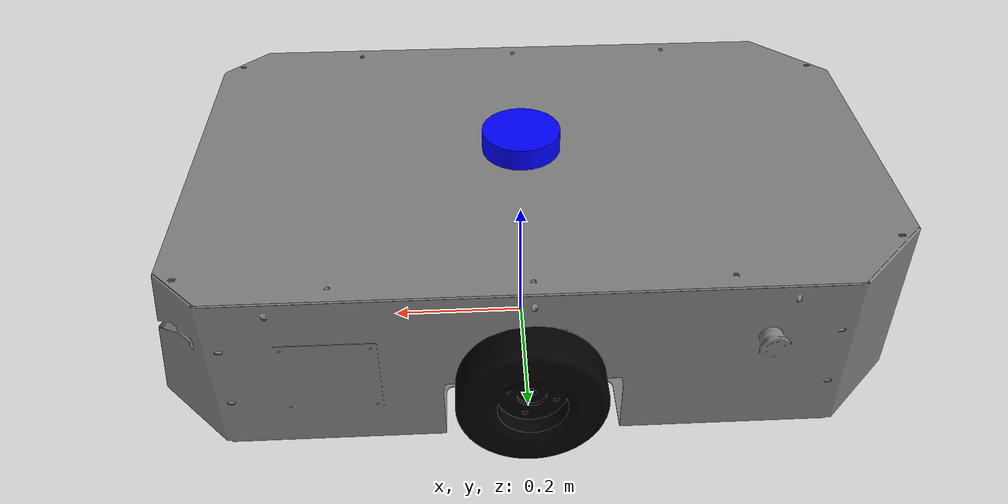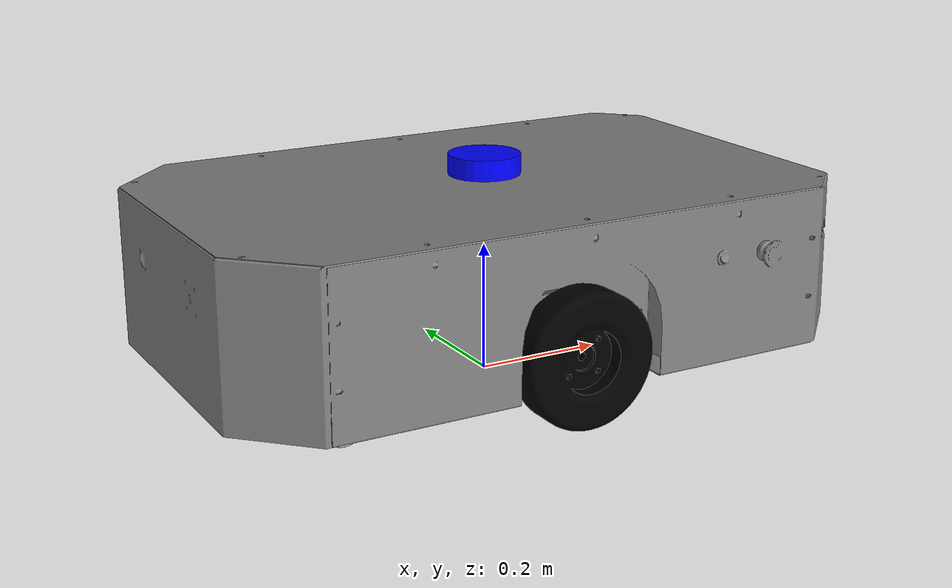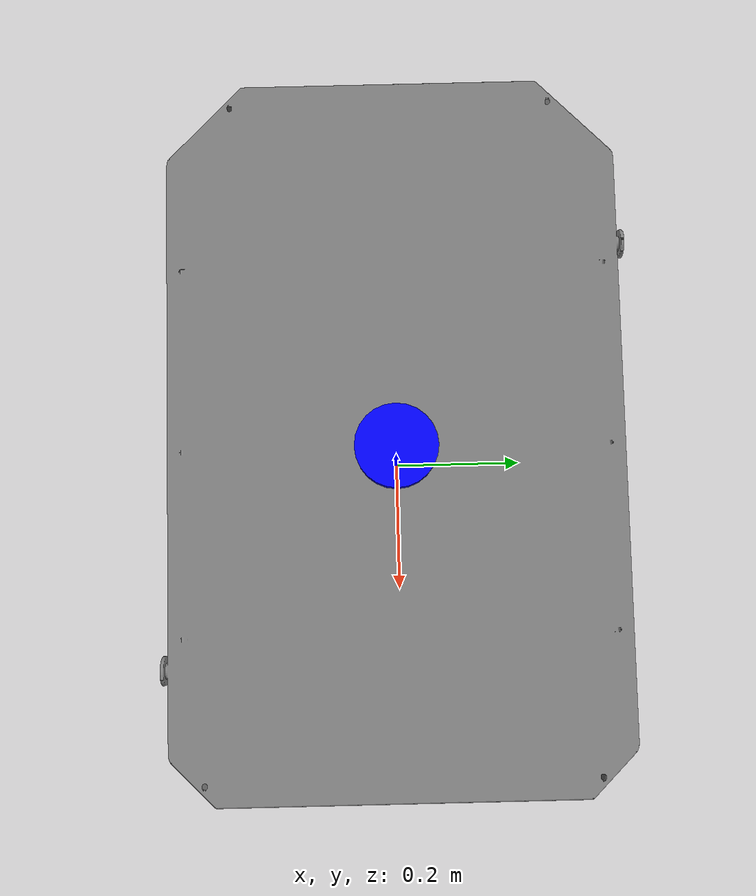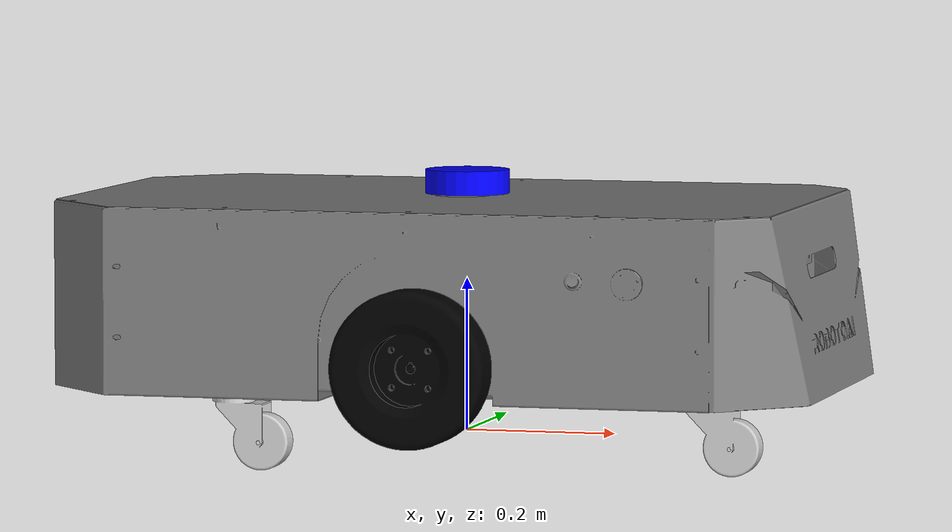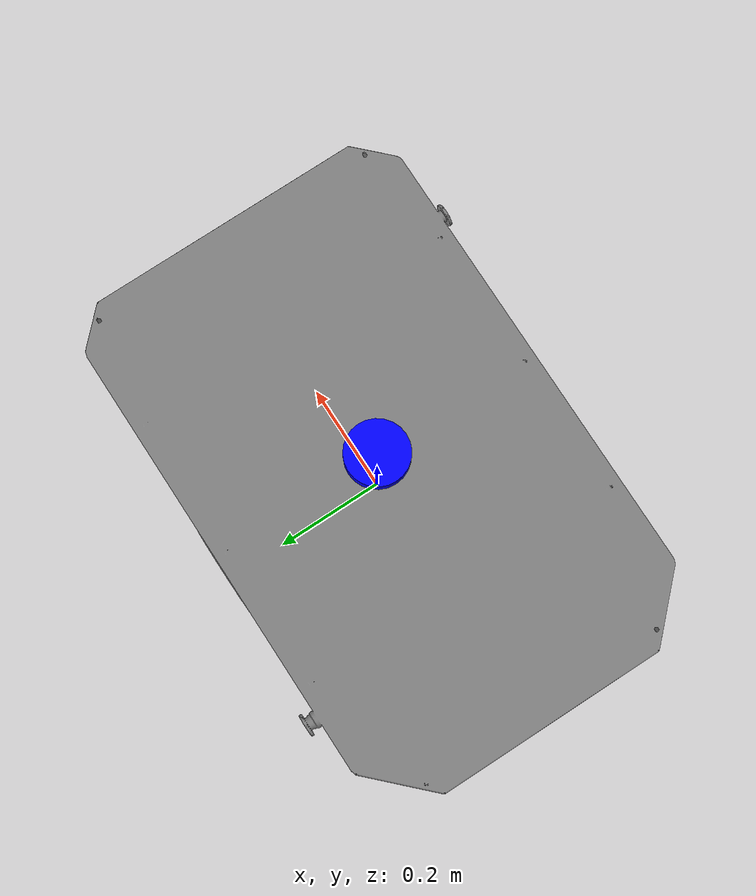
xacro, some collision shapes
<?xml version="1.0"?>
<robot name="my_mesh_robot" xmlns:xacro="http://www.ros.org/wiki/xacro">

  <xacro:property name="base_link_name" value="base_link"/>
  <xacro:property name="lidar_frame_name" value="lidar_link"/>

  <link name="base_footprint"/>

  <joint name="base_joint" type="fixed">
    <parent link="base_footprint"/>
    <child link="${base_link_name}"/>
    <origin xyz="0 0 0.1075" rpy="0 0 0"/>
  </joint>

  <link name="${base_link_name}">
    <visual>
      <geometry>
        <mesh filename="package://my_bot/meshes/base_link.STL"/>
      </geometry>
      <material name="grey">
        <color rgba="0.5 0.5 0.5 1"/>
      </material>
    </visual>
    <collision>
      <geometry>
        <mesh filename="package://my_bot/meshes/base_link.STL"/>
      </geometry>
    </collision>
    <inertial>
      <mass value="40.0"/>
      <inertia ixx="1.0" ixy="0.0" ixz="0.0" iyy="1.0" iyz="0.0" izz="1.0"/>
    </inertial>
  </link>

  <link name="left_wheel">
    <visual>
      <origin xyz="0 0 0" rpy="1.5708 0 0"/>
      <geometry>
        <mesh filename="package://my_bot/meshes/l_wheel.STL"/>
      </geometry>
      <material name="black">
        <color rgba="0 0 0 1"/>
      </material>
    </visual>
    <collision>
      <geometry>
        <cylinder radius="0.1075" length="0.05"/>
      </geometry>
    </collision>
    <inertial>
      <mass value="2.4"/>
      <inertia ixx="0.01" ixy="0" ixz="0" iyy="0.01" iyz="0" izz="0.01"/>
    </inertial>
  </link>
  <joint name="left_wheel_joint" type="continuous">
    <parent link="${base_link_name}"/>
    <child link="left_wheel"/>
    <origin xyz="0 0.281 0" rpy="-1.5708 0 0"/>
    <axis xyz="0 0 1"/>
    <dynamics damping="1.0" friction="0.2"/>
  </joint>
  <gazebo reference="left_wheel">
    <collision><surface><friction><ode><mu>1.2</mu><mu2>1.2</mu2></ode></friction><contact><ode><kp>50000</kp><kd>1.0</kd></ode></contact></surface></collision>
  </gazebo>

  <link name="right_wheel">
    <visual>
      <origin xyz="0 0 0" rpy="1.5708 0 0"/>
      <geometry>
        <mesh filename="package://my_bot/meshes/r_wheel.STL"/>
      </geometry>
      <material name="black">
        <color rgba="0 0 0 1"/>
      </material>
    </visual>
    <collision>
      <geometry>
        <cylinder radius="0.1075" length="0.05"/>
      </geometry>
    </collision>
    <inertial>
      <mass value="2.4"/>
      <inertia ixx="0.01" ixy="0" ixz="0" iyy="0.01" iyz="0" izz="0.01"/>
    </inertial>
  </link>
  <joint name="right_wheel_joint" type="continuous">
    <parent link="${base_link_name}"/>
    <child link="right_wheel"/>
    <origin xyz="0 -0.281 0" rpy="-1.5708 0 0"/>
    <axis xyz="0 0 1"/>
    <dynamics damping="1.0" friction="0.2"/>
  </joint>
  <gazebo reference="right_wheel">
    <collision><surface><friction><ode><mu>1.2</mu><mu2>1.2</mu2></ode></friction><contact><ode><kp>50000</kp><kd>1.0</kd></ode></contact></surface></collision>
  </gazebo>

  <link name="front_caster">
    <visual>
      <geometry>
        <mesh filename="package://my_bot/meshes/f_castor.STL"/>
      </geometry>
      <material name="silver"><color rgba="0.8 0.8 0.8 1"/></material>
    </visual>
    <collision><geometry><sphere radius="0.05"/></geometry></collision>
    <inertial><mass value="0.2"/><inertia ixx="0.0005" ixy="0" ixz="0" iyy="0.0005" iyz="0" izz="0.0005"/></inertial>
  </link>
  <joint name="front_caster_joint" type="fixed">
    <parent link="${base_link_name}"/><child link="front_caster"/>
    <origin xyz="0.3075 0.045 -0.0575" rpy="0 0 0"/>
  </joint>
  <gazebo reference="front_caster">
    <collision><surface><friction><ode><mu>1.0</mu><mu2>1.0</mu2></ode></friction><contact><ode><kp>20000</kp><kd>0.5</kd></ode></contact></surface></collision>
  </gazebo>

  <link name="back_caster">
    <visual>
      <geometry>
        <mesh filename="package://my_bot/meshes/r_castor.STL"/>
      </geometry>
      <material name="silver"><color rgba="0.8 0.8 0.8 1"/></material>
    </visual>
    <collision><geometry><sphere radius="0.05"/></geometry></collision>
    <inertial><mass value="0.2"/><inertia ixx="0.0005" ixy="0" ixz="0" iyy="0.0005" iyz="0" izz="0.0005"/></inertial>
  </link>
  <joint name="back_caster_joint" type="fixed">
    <parent link="${base_link_name}"/><child link="back_caster"/>
    <origin xyz="-0.3075 -0.045 -0.0575" rpy="0 0 0"/>
  </joint>
  <gazebo reference="back_caster">
    <collision><surface><friction><ode><mu>1.0</mu><mu2>1.0</mu2></ode></friction><contact><ode><kp>20000</kp><kd>0.5</kd></ode></contact></surface></collision>
  </gazebo>

  <link name="imu_link"/>
  <joint name="imu_joint" type="fixed">
    <parent link="${base_link_name}"/><child link="imu_link"/>
    <origin xyz="0.0 0 0.068" rpy="0 0 0"/>
  </joint>
  <gazebo reference="imu_link">
    <sensor name="imu_sensor" type="imu">
      <always_on>1</always_on><update_rate>100</update_rate><topic>imu</topic>
      <imu>
        <angular_velocity><noise type="gaussian"><mean>0.0</mean><stddev>0.001</stddev></noise></angular_velocity>
        <linear_acceleration><noise type="gaussian"><mean>0.0</mean><stddev>0.01</stddev></noise></linear_acceleration>
      </imu>
    </sensor>
  </gazebo>

  <link name="${lidar_frame_name}">
    <visual>
      <origin xyz="0 0 -0.03" rpy="0 0 0"/>
      <geometry>
        <mesh filename="package://my_bot/meshes/lidar.STL"/>
      </geometry>
      <material name="blue"><color rgba="0 0 1 1"/></material>
    </visual>
    <collision>
      <origin xyz="0 0 -0.03" rpy="0 0 0"/>
      <geometry><cylinder radius="0.055" length="0.0315"/></geometry>
    </collision>
    <inertial><mass value="0.1"/><inertia ixx="0.0002" ixy="0" ixz="0" iyy="0.0002" iyz="0" izz="0.0002"/></inertial>
  </link>
  <joint name="lidar_joint" type="fixed">
    <parent link="${base_link_name}"/><child link="${lidar_frame_name}"/>
    <origin xyz="0 0 0.250" rpy="0 0 0"/>
  </joint>
  <gazebo reference="${lidar_frame_name}">
    <sensor name="lidar" type="gpu_lidar">
      <gz_frame_id>${lidar_frame_name}</gz_frame_id>
      <pose>0 0 0 0 0 0</pose>
      <topic>scan</topic>
      <update_rate>10</update_rate>
      <ray>
        <scan>
          <horizontal><samples>360</samples><resolution>1</resolution><min_angle>0.0</min_angle><max_angle>6.28319</max_angle></horizontal>
        </scan>
        <range><min>0.12</min><max>4.0</max></range>
      </ray>
      <visualize>true</visualize>
    </sensor>
  </gazebo>

  <link name="camera_link">
    <visual>
      <geometry>
        <mesh filename="package://my_bot/meshes/camera.STL"/>
      </geometry>
      <material name="red"><color rgba="1 0 0 1"/></material>
    </visual>
  </link>
  <joint name="camera_joint" type="fixed">
    <parent link="${base_link_name}"/><child link="camera_link"/>
    <origin xyz="0.25 0 0.1" rpy="0 0 0"/>
  </joint>

  <link name="camera_link_optical"/>
  <joint name="camera_optical_joint" type="fixed">
    <parent link="camera_link"/><child link="camera_link_optical"/>
    <origin xyz="0 0 0" rpy="0 -1.5708 0"/>
  </joint>
  <gazebo reference="camera_link_optical">
    <sensor name="camera" type="camera">
      <pose>0 0 0 0 0 0</pose><visualize>true</visualize><update_rate>30</update_rate><topic>camera/image_raw</topic>
      <camera>
        <horizontal_fov>1.089</horizontal_fov>
        <image><format>R8G8B8</format><width>640</width><height>480</height></image>
        <clip><near>0.05</near><far>8.0</far></clip>
      </camera>
    </sensor>
  </gazebo>

  <gazebo>
    <plugin filename="gz-sim-diff-drive-system" name="gz::sim::systems::DiffDrive">
      <left_joint>left_wheel_joint</left_joint>
      <right_joint>right_wheel_joint</right_joint>
      <wheel_separation>0.565</wheel_separation>
      <wheel_radius>0.1075</wheel_radius>
      <odom_publish_frequency>50</odom_publish_frequency>
      <topic>cmd_vel</topic>
      <odom_topic>odom</odom_topic>
      <tf_topic>tf</tf_topic>
      <frame_id>odom</frame_id>
      <child_frame_id>base_footprint</child_frame_id>
    </plugin>
    <plugin filename="gz-sim-joint-state-publisher-system" name="gz::sim::systems::JointStatePublisher">
      <topic>joint_states</topic>
    </plugin>
    <plugin filename="gz-sim-imu-system" name="gz::sim::systems::Imu"/>
  </gazebo>

</robot>
